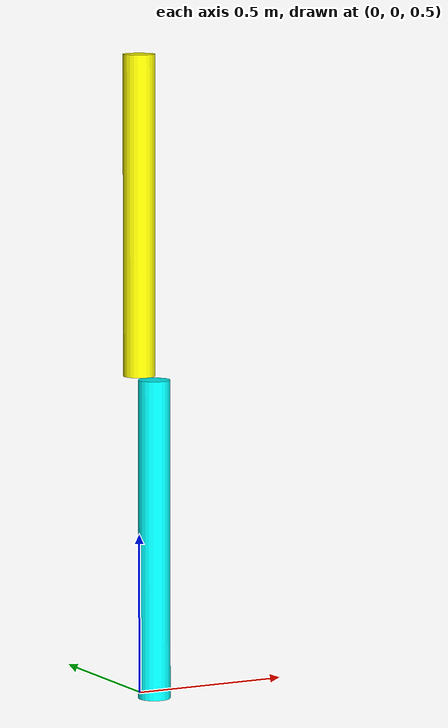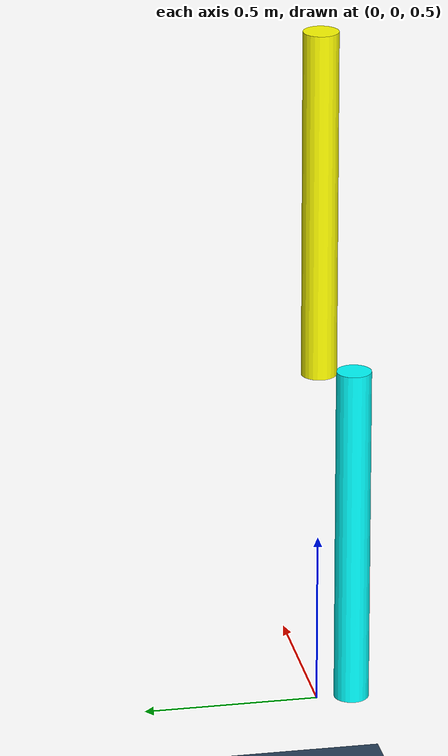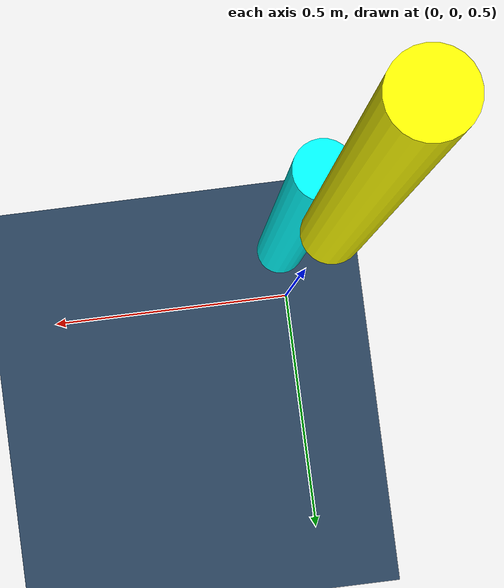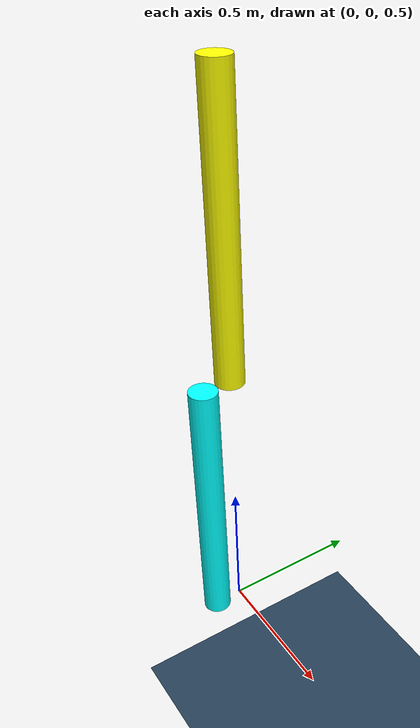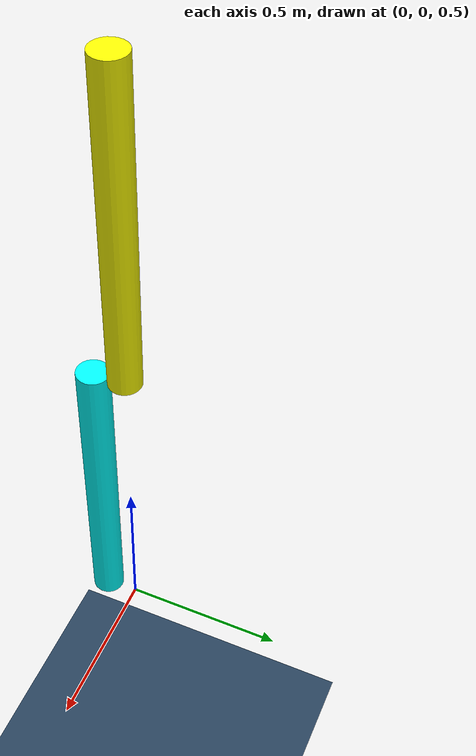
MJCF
<mujoco>
    <option timestep="0.01" integrator="RK4" gravity="0 0 -9.81">
        <flag gravity="enable"/>
    </option>
    <visual>
        <rgba haze="0.5 0.5 0.5 1"/>
        <global offwidth="1920" offheight="1080" elevation="-20" azimuth="120"/>
    </visual>

    <asset>
        <texture type="skybox" builtin="gradient" rgb1="0.4 0.6 0.8" rgb2="0 0 0" width="32" height="512"/>
        <texture name="grid" type="2d" builtin="checker" rgb1="0.2 0.3 0.4" rgb2="0.1 0.2 0.3" width="512" height="512"/>
        <material name="grid" texture="grid" texrepeat="1 1" texuniform="true" reflectance="0.2"/>
    </asset>
    <worldbody>
        <geom name="floor" size="0 0 0.01" type="plane" material="grid" condim="1" solref="1 0.1"/>
        <light name="floorlight" mode="fixed" pos="0 0 50" dir="0 0 -1" diffuse="0.8 0.8 0.8" specular="0.3 0.3 0.3"/>
        <body pos="0 0 2" euler="0 0 0">
        <joint name="joint0" type="hinge" axis="0 -1 0" pos="0 0 0.5"/>
        <joint name="joint1" type="hinge" axis="-1 0 0" pos="0 0 0.5"/>
        <geom type="cylinder" size="0.05 0.5" rgba="1 1 0 1" mass="1"/>
            <body pos="0 -0.1 -1" euler="0 0 0">
                <joint name="joint2" type="hinge" axis="0 1 0" pos="0 0 0.5"/>
                <joint name="joint3" type="hinge" axis="1 0 0" pos="0 0 0.5"/>
                <geom type="cylinder" size="0.05 0.5" rgba="0 1 1 1" mass="1"/>
            </body>
        </body>
    </worldbody>
    <actuator>
        <motor name="torque0" joint="joint0" gear="1"/>
        <motor name="torque1" joint="joint1" gear="1"/>
    </actuator>
</mujoco>
